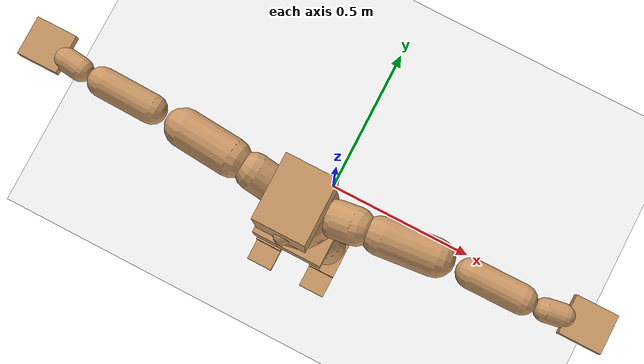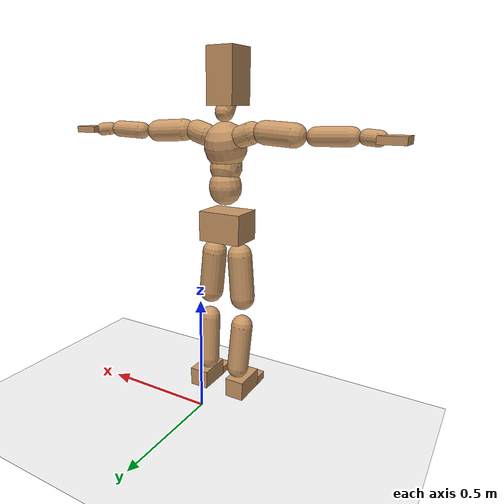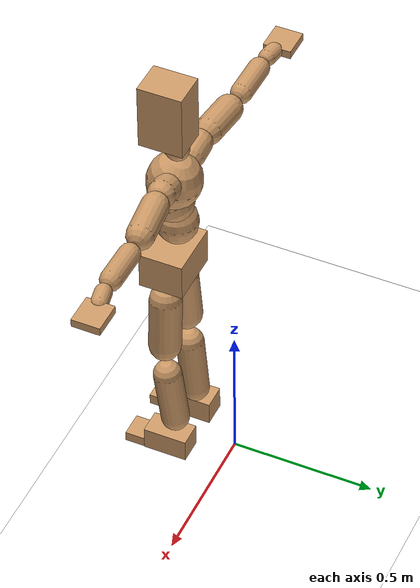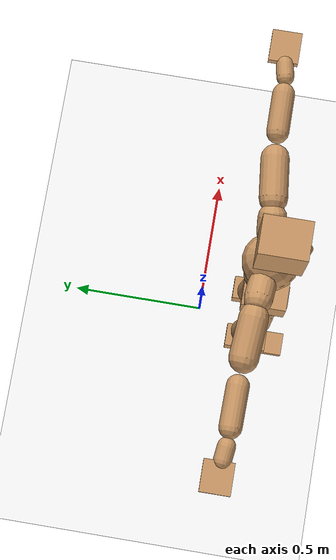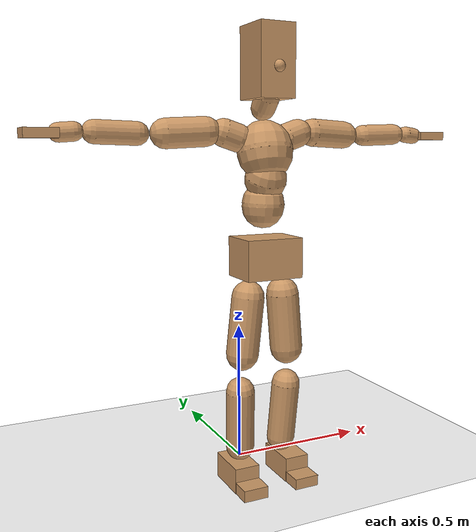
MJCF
<mujoco model="humanoid">
  <option integrator="implicitfast" />

  <visual>
    <global offwidth="1280" offheight="960" />
    <headlight active="1" ambient="0.34 0.34 0.34" diffuse="0.5 0.5 0.5" />
  </visual>

  <default>
    <joint damping="2" stiffness="2" armature="0.01" limited="true" solimplimit="0 .99 .01" />
    <geom condim="1" friction="0.7 0.005 0.0001" solimp=".99 .99 .003" solref="0.015 1" margin="0.001" rgba="0.8 0.6 .4 1" />
    <default class="smplcontact">
      <geom condim="3" friction="1. 0.005 0.0001" solref="0.015 1" solimp="0.98 0.98 0.001" priority="1" />
    </default>
    <default class="stiff_medium">
      <joint stiffness="10" />
    </default>
    <default class="stiff_medium_higher">
      <joint stiffness="50" />
    </default>
    <default class="stiff_high">
      <joint stiffness="100" />
    </default>
  </default>

  <asset>
    <texture type="skybox" builtin="gradient" rgb1="0.99 0.99 0.99" rgb2="0.608 0.828 0.892" width="100" />
    <texture builtin="flat" height="1278" mark="cross" markrgb="1 1 1" name="texgeom" random="0.01" rgb1="0.8 0.6 0.4" rgb2="0.8 0.6 0.4" type="cube" width="127" />
    <texture name="texplane" type="2d" builtin="checker" markrgb="1 1 1" rgb1="0.756 0.772 0.76" rgb2="0.6 0.6 0.6" width="100" height="100" />
    <material name="MatPlane" reflectance="0.5" texture="texplane" texrepeat="1 1" texuniform="true" />
    <material name="geom" texture="texgeom" texuniform="true" />
  </asset>

  <worldbody>
    <light name="tracking_light" pos="0 0 7" dir="0 0 -1" directional="true" cutoff="100" exponent="1" diffuse="1 1 1" specular="0.1 0.1 0.1" mode="trackcom" />
    <camera name="back" pos="0 3 2.4" xyaxes="-1 0 0 0 -1 2" mode="trackcom" />
    <camera name="side" pos="-3 0 2.4" xyaxes="0 -1 0 1 0 2" mode="trackcom" />
    <camera name="front_side" pos="-2.8 -2.8 0.8" xyaxes="0.5 -0.5 0 0.1 0.1 1" mode="trackcom" />
    <geom condim="3" name="floor" pos="0 0 0" rgba="1 1 1 1" size="100 100 .2" type="plane" material="MatPlane" />
    <body name="Pelvis" pos="-0.0018 -0.2233 0.798585" euler="90 0 0">
      <site name="Pelvis" size="0.01" />
      <freejoint name="Pelvis" />
      <geom type="box" pos="-0.0000 -0.0121 -0.0055" size="0.098348 0.066424 0.07636" quat="1.0000 0.0000 0.0000 0.0000" density="3165.830099" name="Pelvis" />
      <body name="L_Hip" pos="0.059075 -0.07769 -0.00578">
        <joint name="L_Hip_x" type="hinge" pos="0 0 0" axis="1 0 0" stiffness="5.966138699999998" range="-160.0 22.92" class="stiff_medium" damping="8.284486106310219" armature="0.005112758556376547"/>
        <joint name="L_Hip_y" type="hinge" pos="0 0 0" axis="0 1 0" stiffness="5.975056199999999" range="-70.0 70.0" class="stiff_medium" damping="5.712979736623547" armature="0.005462398407411005"/>
        <joint name="L_Hip_z" type="hinge" pos="0 0 0" axis="0 0 1" stiffness="5.9732682" range="-28.65 90.0" class="stiff_medium" damping="5.526007499315107" armature="0.005112236360404311"/>
        <geom type="capsule" density="2040.816327" fromto="0.005865 -0.06375 -0.000765 0.02329 -0.25517 -0.00306" size="0.05535" name="L_Hip" />
        <body name="L_Knee" pos="0.029155 -0.31892 -0.003825">
          <joint name="L_Knee_x" type="hinge" pos="0 0 0" axis="1 0 0" range="-5.16 171.89" damping="4.457618359508005" armature="0.005170875426032526" stiffness="1.2008581600000001"/>
          <joint name="L_Knee_y" type="hinge" pos="0 0 0" axis="0 1 0" range="-4.58 6.88" damping="4.598272838351636" armature="0.005523860242055518" stiffness="1.1961807599999998"/>
          <joint name="L_Knee_z" type="hinge" pos="0 0 0" axis="0 0 1" range="-6.88 4.58" damping="4.461976160604364" armature="0.005168304620364264" stiffness="1.20380574"/>
          <geom type="capsule" density="1234.567901" fromto="-0.002295 -0.06766 -0.007395 -0.009265 -0.27064 -0.02975" size="0.04869" name="L_Knee" />
          <body name="L_Ankle" pos="-0.01156 -0.3383 -0.037145">
            <joint name="L_Ankle_x" type="hinge" pos="0 0 0" axis="1 0 0" range="-45.84 45.84" class="stiff_medium" damping="3.4980555196580108" armature="0.005485351237082706" stiffness="6.1965"/>
            <joint name="L_Ankle_y" type="hinge" pos="0 0 0" axis="0 1 0" range="-74.48 22.92" class="stiff_medium" damping="1.751514353083794" armature="0.005500959375020919" stiffness="6.1965"/>
            <joint name="L_Ankle_z" type="hinge" pos="0 0 0" axis="0 0 1" range="-4.58 4.58" class="stiff_medium" damping="3.5354133385165336" armature="0.005603139529555493" stiffness="6.1965"/>
            <geom type="box" pos="0.019805 -0.020315 0.02057" size="0.04347 0.04176 0.0765" quat="1.0000 0.0000 0.0000 0.0000" density="449.071558" name="L_Ankle" class="smplcontact" />
            <body name="L_Toe" pos="0.02244 -0.04743 0.101405">
              <joint name="L_Toe_x" type="hinge" pos="0 0 0" axis="1 0 0" range="-91.67 22.92" armature="0.0056623876359982814" damping="1.1846853588436612" stiffness="1.2393"/>
              <joint name="L_Toe_y" type="hinge" pos="0 0 0" axis="0 1 0" range="-4.58 4.58" armature="0.005734030461398372" damping="1.192156361456919" stiffness="1.2393"/>
              <joint name="L_Toe_z" type="hinge" pos="0 0 0" axis="0 0 1" range="-4.58 4.58" armature="0.005878888398200573" damping="1.2071210703065347" stiffness="1.2393"/>
              <geom type="box" pos="-0.00255 0.004675 0.02108" size="0.04302 0.018 0.04464" quat="1.0000 0.0000 0.0000 0.0000" density="423.206892" name="L_Toe" class="smplcontact" />
            </body>
          </body>
        </body>
      </body>
      <body name="R_Hip" pos="-0.057545 -0.076925 -0.003655">
        <joint name="R_Hip_x" type="hinge" pos="0 0 0" axis="1 0 0" stiffness="5.966138699999998" range="-160.0 22.92" class="stiff_medium" damping="8.284486106310219" armature="0.005112758556376547"/>
        <joint name="R_Hip_y" type="hinge" pos="0 0 0" axis="0 1 0" stiffness="5.975056199999999" range="-70.0 70.0" class="stiff_medium" damping="5.712979736623547" armature="0.005462398407411005"/>
        <joint name="R_Hip_z" type="hinge" pos="0 0 0" axis="0 0 1" stiffness="5.9732682" range="-90.0 28.65" class="stiff_medium" damping="5.526007499315107" armature="0.005112236360404311"/>
        <geom type="capsule" density="2040.816327" fromto="-0.006545 -0.065025 -0.00153 -0.02601 -0.260185 -0.006035" size="0.05454" name="R_Hip" />
        <body name="R_Knee" pos="-0.032555 -0.32521 -0.007565">
          <joint name="R_Knee_x" type="hinge" pos="0 0 0" axis="1 0 0" range="-5.16 171.89" damping="4.457618359508005" armature="0.005170875426032526" stiffness="1.2008581600000001"/>
          <joint name="R_Knee_y" type="hinge" pos="0 0 0" axis="0 1 0" range="-6.88 4.58" damping="4.598272838351636" armature="0.005523860242055518" stiffness="1.1961807599999998"/>
          <joint name="R_Knee_z" type="hinge" pos="0 0 0" axis="0 0 1" range="-4.58 6.88" damping="4.461976160604364" armature="0.005168304620364264" stiffness="1.20380574"/>
          <geom type="capsule" density="1234.567901" fromto="0.00272 -0.067745 -0.007225 0.01071 -0.270895 -0.02873" size="0.04869" name="R_Knee" />
          <body name="R_Ankle" pos="0.01343 -0.33864 -0.035955">
            <joint name="R_Ankle_x" type="hinge" pos="0 0 0" axis="1 0 0" range="-45.84 45.84" class="stiff_medium" damping="3.4980555196580108" armature="0.005485351237082706" stiffness="6.1965"/>
            <joint name="R_Ankle_y" type="hinge" pos="0 0 0" axis="0 1 0" range="-22.92 74.48" class="stiff_medium" damping="1.751514353083794" armature="0.005500959375020919" stiffness="6.1965"/>
            <joint name="R_Ankle_z" type="hinge" pos="0 0 0" axis="0 0 1" range="-4.58 4.58" class="stiff_medium" damping="3.5354133385165336" armature="0.005603139529555493" stiffness="6.1965"/>
            <geom type="box" pos="-0.01802 -0.01479 0.02176" size="0.04347 0.04302 0.07785" quat="1.0000 0.0000 0.0000 0.0000" density="434.700981" name="R_Ankle" class="smplcontact" />
            <body name="R_Toe" pos="-0.02159 -0.040885 0.104805">
              <joint name="R_Toe_x" type="hinge" pos="0 0 0" axis="1 0 0" range="-91.67 22.92" armature="0.0056623876359982814" damping="1.1846853588436612" stiffness="1.2393"/>
              <joint name="R_Toe_y" type="hinge" pos="0 0 0" axis="0 1 0" range="-4.58 4.58" armature="0.005734030461398372" damping="1.192156361456919" stiffness="1.2393"/>
              <joint name="R_Toe_z" type="hinge" pos="0 0 0" axis="0 0 1" range="-4.58 4.58" armature="0.005878888398200573" damping="1.2071210703065347" stiffness="1.2393"/>
              <geom type="box" pos="0.00357 0.003825 0.019295" size="0.04311 0.01944 0.04437" quat="1.0000 0.0000 0.0000 0.0000" density="407.384095" name="R_Toe" class="smplcontact" />
            </body>
          </body>
        </body>
      </body>
      <body name="Torso" pos="-0.00225 0.0981 -0.02403">
        <joint name="Torso_x" type="hinge" pos="0 0 0" axis="1 0 0" range="-25.78 57.3" class="stiff_medium" damping="10.79066287707171" armature="0.0070139426835881214" stiffness="7.378218599999999"/>
        <joint name="Torso_y" type="hinge" pos="0 0 0" axis="0 1 0" range="-57.3 57.3" class="stiff_high" damping="12.699756631597609" armature="0.005348312492888898" stiffness="75.39005"/>
        <joint name="Torso_z" type="hinge" pos="0 0 0" axis="0 0 1" range="-34.38 34.38" class="stiff_high" damping="13.78931186207527" armature="0.006441906627780043" stiffness="73.7922530612245"/>
        <geom type="capsule" density="2040.816327" fromto="0.00225 0.05472 0.00045 0.0027 0.06687 0.00054" size="0.070748" name="Torso" />
        <body name="Spine" pos="0.00495 0.12168 0.00099">
          <joint name="Spine_x" type="hinge" pos="0 0 0" axis="1 0 0" stiffness="7.515189000000002" range="-25.78 57.3" class="stiff_medium" damping="11.229535285069272" armature="0.007457635328406439"/>
          <joint name="Spine_y" type="hinge" pos="0 0 0" axis="0 1 0" stiffness="7.604954081632652" range="-57.3 57.3" class="stiff_high" damping="5.097795456774209" armature="0.005339348173603776"/>
          <joint name="Spine_z" type="hinge" pos="0 0 0" axis="0 0 1" stiffness="15.199596800000002" range="-34.38 34.38" class="stiff_high" damping="8.296269441807487" armature="0.006289282936317823"/>
          <geom type="capsule" density="2040.816327" fromto="0.00063 0.02142 0.01026 0.00072 0.02619 0.0126" size="0.06946" name="Spine" />
          <body name="Chest" pos="0.00135 0.04761 0.02286">
            <joint name="Chest_x" type="hinge" pos="0 0 0" axis="1 0 0" stiffness="7.7273957142857155" range="-25.78 57.3" class="stiff_medium" damping="11.567290964756623" armature="0.0076956914915635765"/>
            <joint name="Chest_y" type="hinge" pos="0 0 0" axis="0 1 0" stiffness="7.196691219512195" range="-57.3 57.3" class="stiff_high" damping="4.953513265379715" armature="0.005327381735634787"/>
            <joint name="Chest_z" type="hinge" pos="0 0 0" axis="0 0 1" stiffness="15.509569795918367" range="-34.38 34.38" class="stiff_high" damping="8.310204084259297" armature="0.006184308286105733"/>
            <geom type="capsule" density="2040.816327" fromto="-0.00081 0.06138 -0.01557 -0.0009 0.07497 -0.01908" size="0.092184" name="Chest" />
            <body name="Neck" pos="-0.00252 0.19251 -0.03861">
              <joint name="Neck_x" type="hinge" pos="0 0 0" axis="1 0 0" range="-28.65 57.3" class="stiff_medium_higher" damping="9.859293356864805" armature="0.00994472685879985" stiffness="48.872969000000005"/>
              <joint name="Neck_y" type="hinge" pos="0 0 0" axis="0 1 0" range="-40.11 40.11" class="stiff_medium_higher" damping="9.813863205246813" armature="0.009809668204441332" stiffness="49.09029999999999"/>
              <joint name="Neck_z" type="hinge" pos="0 0 0" axis="0 0 1" range="-40.11 40.11" class="stiff_medium_higher" damping="9.924728289965035" armature="0.009957239330613907" stiffness="49.461617"/>
              <geom type="capsule" density="1000" fromto="0.0009 0.0117 0.00927 0.00369 0.0468 0.03699" size="0.040112" name="Neck" />
              <body name="Head" pos="0.0052 0.065 0.0513">
                <joint name="Head_x" type="hinge" pos="0 0 0" axis="1 0 0" range="-28.65 57.3" class="stiff_medium_higher" damping="2.000000000000004" armature="0.01000000000000004" stiffness="50.0"/>
                <joint name="Head_y" type="hinge" pos="0 0 0" axis="0 1 0" range="-40.11 40.11" class="stiff_medium_higher" damping="2.0" armature="0.01" stiffness="50.0"/>
                <joint name="Head_z" type="hinge" pos="0 0 0" axis="0 0 1" range="-40.11 40.11" class="stiff_medium_higher" damping="2.000000000000001" armature="0.01000000000000001" stiffness="50.0"/>
                <geom type="box" pos="-0.0042 0.0876 -0.0116" size="0.0606 0.1154 0.076" quat="1.0000 0.0000 0.0000 0.0000" density="1018.069894" name="Head" />
                <geom type="capsule" name="nose" size="0.02 0.01" pos="0 0.07 0.05" quat="1 0 0 0" mass="0" contype="0" conaffinity="0" />
              </body>
            </body>
            <body name="L_Thorax" pos="0.067768 0.104662 -0.029326">
              <joint name="L_Thorax_x" type="hinge" pos="0 0 0" axis="1 0 0" range="-10.89 4.58" class="stiff_medium_higher" damping="11.555926081383854" armature="0.005473668010684904" stiffness="30.495873"/>
              <joint name="L_Thorax_y" type="hinge" pos="0 0 0" axis="0 1 0" range="-28.65 17.19" class="stiff_medium_higher" damping="11.323675956724701" armature="0.005261688221579355" stiffness="30.462095"/>
              <joint name="L_Thorax_z" type="hinge" pos="0 0 0" axis="0 0 1" range="-31.51 40.11" class="stiff_medium_higher" damping="11.323589149694058" armature="0.005261496748292337" stiffness="30.4627365"/>
              <geom type="capsule" density="1000" fromto="0.015652 0.005246 -0.001548 0.062608 0.020984 -0.006106" size="0.04689" name="L_Thorax" />
              <body name="L_Shoulder" pos="0.07826 0.02623 -0.007654">
                <joint name="L_Shoulder_x" type="hinge" pos="0 0 0" axis="1 0 0" range="-97.4 97.4" class="stiff_medium" damping="3.4939045509568643" armature="0.005556544119489747" stiffness="6.1025986"/>
                <joint name="L_Shoulder_y" type="hinge" pos="0 0 0" axis="0 1 0" range="-108.86 80.21" class="stiff_medium" damping="3.400392406402702" armature="0.005269111427976456" stiffness="6.0956243"/>
                <joint name="L_Shoulder_z" type="hinge" pos="0 0 0" axis="0 0 1" range="-97.4 85.94" class="stiff_medium" damping="3.4002541968494615" armature="0.005268862205778419" stiffness="6.095417100000001"/>
                <geom type="capsule" density="1000" fromto="0.044634 -0.002236 -0.00473 0.178622 -0.008772 -0.01892" size="0.04653" name="L_Shoulder" />
                <body name="L_Elbow" pos="0.223256 -0.011008 -0.02365">
                  <joint name="L_Elbow_x" type="hinge" pos="0 0 0" axis="1 0 0" range="-17.19 4.58" damping="2.951476282130367" armature="0.005689428016587954" stiffness="1.22489814"/>
                  <joint name="L_Elbow_y" type="hinge" pos="0 0 0" axis="0 1 0" range="-180.0 17.19" damping="2.8500857800400676" armature="0.005305297026638614" stiffness="1.22488734"/>
                  <joint name="L_Elbow_z" type="hinge" pos="0 0 0" axis="0 0 1" range="-100.84 4.58" damping="2.849911081216699" armature="0.005303989337576094" stiffness="1.22503914"/>
                  <geom type="capsule" density="1000" fromto="0.042828 0.001548 -0.000172 0.171484 0.006192 -0.000774" size="0.03645" name="L_Elbow" />
                  <body name="L_Wrist" pos="0.214312 0.00774 -0.001032">
                    <joint name="L_Wrist_x" type="hinge" pos="0 0 0" axis="1 0 0" range="-180.0 22.92" armature="0.005729485041482478" damping="1.1938442182798314" stiffness="1.24379766"/>
                    <joint name="L_Wrist_y" type="hinge" pos="0 0 0" axis="0 1 0" range="-17.19 17.19" armature="0.005429346137515428" damping="1.1614725914285373" stiffness="1.24233982"/>
                    <joint name="L_Wrist_z" type="hinge" pos="0 0 0" axis="0 0 1" range="-22.92 22.92" armature="0.00541257507679777" damping="1.159896635388302" stiffness="1.2428097400000002"/>
                    <geom type="capsule" density="1000" fromto="0.014448 -0.001376 -0.00258 0.057792 -0.00559 -0.01032" size="0.02862" name="L_Wrist" class="smplcontact" />
                    <body name="L_Hand" pos="0.07224 -0.007052 -0.012814">
                      <joint name="L_Hand_x" type="hinge" pos="0 0 0" axis="1 0 0" range="-17.19 17.19" armature="0.005882541149362159" damping="1.2145781733887882" stiffness="1.2538800000000003"/>
                      <joint name="L_Hand_y" type="hinge" pos="0 0 0" axis="0 1 0" range="-51.57 51.57" armature="0.00563450054888528" damping="1.1886957178551856" stiffness="1.2538800000000003"/>
                      <joint name="L_Hand_z" type="hinge" pos="0 0 0" axis="0 0 1" range="-91.67 91.67" armature="0.005568381937829201" damping="1.1817007018873502" stiffness="1.2538800000000003"/>
                      <geom type="box" pos="0.042398 0.00086 -0.004988" size="0.05265 0.01422 0.04842" quat="1.0000 0.0000 0.0000 0.0000" density="400.552564" name="L_Hand" class="smplcontact" />
                    </body>
                  </body>
                </body>
              </body>
            </body>
            <body name="R_Thorax" pos="-0.070348 0.102168 -0.033196">
              <joint name="R_Thorax_x" type="hinge" pos="0 0 0" axis="1 0 0" range="-10.89 4.58" class="stiff_medium_higher" damping="11.555926081383854" armature="0.005473668010684904" stiffness="30.495873"/>
              <joint name="R_Thorax_y" type="hinge" pos="0 0 0" axis="0 1 0" range="-17.19 28.65" class="stiff_medium_higher" damping="11.323675956724701" armature="0.005261688221579355" stiffness="30.462095"/>
              <joint name="R_Thorax_z" type="hinge" pos="0 0 0" axis="0 0 1" range="-40.11 31.51" class="stiff_medium_higher" damping="11.323589149694058" armature="0.005261496748292337" stiffness="30.4627365"/>
              <geom type="capsule" density="1000" fromto="-0.016512 0.00559 -0.001548 -0.066048 0.02236 -0.006278" size="0.04599" name="R_Thorax" />
              <body name="R_Shoulder" pos="-0.08256 0.028036 -0.007826">
                <joint name="R_Shoulder_x" type="hinge" pos="0 0 0" axis="1 0 0" range="-97.4 97.4" class="stiff_medium" damping="3.4939045509568643" armature="0.005556544119489747" stiffness="6.1025986"/>
                <joint name="R_Shoulder_y" type="hinge" pos="0 0 0" axis="0 1 0" range="-80.21 108.86" class="stiff_medium" damping="3.400392406402702" armature="0.005269111427976456" stiffness="6.0956243"/>
                <joint name="R_Shoulder_z" type="hinge" pos="0 0 0" axis="0 0 1" range="-85.94 97.4" class="stiff_medium" damping="3.4002541968494615" armature="0.005268862205778419" stiffness="6.095417100000001"/>
                <geom type="capsule" density="1000" fromto="-0.043602 -0.002322 -0.003698 -0.17458 -0.009202 -0.014706" size="0.04779" name="R_Shoulder" />
                <body name="R_Elbow" pos="-0.218182 -0.011438 -0.018404">
                  <joint name="R_Elbow_x" type="hinge" pos="0 0 0" axis="1 0 0" range="-17.19 4.58" damping="2.951476282130367" armature="0.005689428016587954" stiffness="1.22489814"/>
                  <joint name="R_Elbow_y" type="hinge" pos="0 0 0" axis="0 1 0" range="-17.19 180.0" damping="2.8500857800400676" armature="0.005305297026638614" stiffness="1.22488734"/>
                  <joint name="R_Elbow_z" type="hinge" pos="0 0 0" axis="0 0 1" range="-4.58 100.84" damping="2.849911081216699" armature="0.005303989337576094" stiffness="1.22503914"/>
                  <geom type="capsule" density="1000" fromto="-0.043946 0.001376 -0.000946 -0.175612 0.005332 -0.003784" size="0.03672" name="R_Elbow" />
                  <body name="R_Wrist" pos="-0.219558 0.006708 -0.004816">
                    <joint name="R_Wrist_x" type="hinge" pos="0 0 0" axis="1 0 0" range="-180.0 22.92" armature="0.005729485041482478" damping="1.1938442182798314" stiffness="1.24379766"/>
                    <joint name="R_Wrist_y" type="hinge" pos="0 0 0" axis="0 1 0" range="-17.19 17.19" armature="0.005429346137515428" damping="1.1614725914285373" stiffness="1.24233982"/>
                    <joint name="R_Wrist_z" type="hinge" pos="0 0 0" axis="0 0 1" range="-22.92 22.92" armature="0.00541257507679777" damping="1.159896635388302" stiffness="1.2428097400000002"/>
                    <geom type="capsule" density="1000" fromto="-0.014534 -0.001032 -0.001806 -0.058222 -0.004214 -0.007138" size="0.02934" name="R_Wrist" class="smplcontact" />
                    <body name="R_Hand" pos="-0.072756 -0.005246 -0.008858">
                      <joint name="R_Hand_x" type="hinge" pos="0 0 0" axis="1 0 0" range="-17.19 17.19" armature="0.005882541149362159" damping="1.2145781733887882" stiffness="1.2538800000000003"/>
                      <joint name="R_Hand_y" type="hinge" pos="0 0 0" axis="0 1 0" range="-51.57 51.57" armature="0.00563450054888528" damping="1.1886957178551856" stiffness="1.2538800000000003"/>
                      <joint name="R_Hand_z" type="hinge" pos="0 0 0" axis="0 0 1" range="-91.67 91.67" armature="0.005568381937829201" damping="1.1817007018873502" stiffness="1.2538800000000003"/>
                      <geom type="box" pos="-0.039732 -0.000774 -0.006794" size="0.05121 0.01476 0.04914" quat="1.0000 0.0000 0.0000 0.0000" density="403.679611" name="R_Hand" class="smplcontact" />
                    </body>
                  </body>
                </body>
              </body>
            </body>
          </body>
        </body>
      </body>
    </body>
  </worldbody>
  <actuator>
    <general name="L_Hip_x" joint="L_Hip_x" biastype="affine" gainprm="171.42510150845158" biasprm="-128.46573865503248 -107.39049659999998 -1.104598147508029" ctrllimited="true" ctrlrange="-1 1" forcerange="-214.78099319999995 214.78099319999995" />
    <general name="L_Hip_y" joint="L_Hip_y" biastype="affine" gainprm="131.39834863894302" biasprm="0.0 -107.5510116 -1.1425959473247094" ctrllimited="true" ctrlrange="-1 1" forcerange="-215.1020232 215.1020232" />
    <general name="L_Hip_z" joint="L_Hip_z" biastype="affine" gainprm="111.32677662433386" biasprm="57.56340283103987 -107.51882759999998 -1.1052014998630215" ctrllimited="true" ctrlrange="-1 1" forcerange="-215.03765519999996 215.03765519999996" />
    <general name="L_Knee_x" joint="L_Knee_x" biastype="affine" gainprm="166.9850250152448" biasprm="157.25169850771962 -108.07723440000001 -1.1144045898770012" ctrllimited="true" ctrlrange="-1 1" forcerange="-216.15446880000002 216.15446880000002" />
    <general name="L_Knee_y" joint="L_Knee_y" biastype="affine" gainprm="10.766419851066868" biasprm="2.1607997955893365 -107.65626839999999 -1.149568209587909" ctrllimited="true" ctrlrange="-1 1" forcerange="-215.31253679999998 215.31253679999998" />
    <general name="L_Knee_z" joint="L_Knee_z" biastype="affine" gainprm="10.835049726066687" biasprm="-2.174573679751604 -108.3425166 -1.115494040151091" ctrllimited="true" ctrlrange="-1 1" forcerange="-216.6850332 216.6850332" />
    <general name="L_Ankle_x" joint="L_Ankle_x" biastype="affine" gainprm="44.61808638830531" biasprm="0.0 -55.7685 -1.1660185065526703" ctrllimited="true" ctrlrange="-1 1" forcerange="-111.537 111.537" />
    <general name="L_Ankle_y" joint="L_Ankle_y" biastype="affine" gainprm="47.4018500678549" biasprm="-25.092806873702244 -55.7685 -1.167676235389196" ctrllimited="true" ctrlrange="-1 1" forcerange="-111.537 111.537" />
    <general name="L_Ankle_z" joint="L_Ankle_z" biastype="affine" gainprm="4.457915263054936" biasprm="0.0 -55.7685 -1.1784711128388445" ctrllimited="true" ctrlrange="-1 1" forcerange="-111.537 111.537" />
    <general name="L_Toe_x" joint="L_Toe_x" biastype="affine" gainprm="44.614193012529704" biasprm="-26.766958457207583 -44.6148 -0.4738741435374645" ctrllimited="true" ctrlrange="-1 1" forcerange="-89.2296 89.2296" />
    <general name="L_Toe_y" joint="L_Toe_y" biastype="affine" gainprm="3.566332210443949" biasprm="0.0 -44.6148 -0.47686254458276767" ctrllimited="true" ctrlrange="-1 1" forcerange="-89.2296 89.2296" />
    <general name="L_Toe_z" joint="L_Toe_z" biastype="affine" gainprm="3.566332210443949" biasprm="0.0 -44.6148 -0.4828484281226139" ctrllimited="true" ctrlrange="-1 1" forcerange="-89.2296 89.2296" />
    <general name="R_Hip_x" joint="R_Hip_x" biastype="affine" gainprm="171.42510150845158" biasprm="-128.46573865503248 -107.39049659999998 -1.104598147508029" ctrllimited="true" ctrlrange="-1 1" forcerange="-214.78099319999995 214.78099319999995" />
    <general name="R_Hip_y" joint="R_Hip_y" biastype="affine" gainprm="131.39834863894302" biasprm="0.0 -107.5510116 -1.1425959473247094" ctrllimited="true" ctrlrange="-1 1" forcerange="-215.1020232 215.1020232" />
    <general name="R_Hip_z" joint="R_Hip_z" biastype="affine" gainprm="111.32677662433386" biasprm="-57.56340283103987 -107.51882759999998 -1.1052014998630215" ctrllimited="true" ctrlrange="-1 1" forcerange="-215.03765519999996 215.03765519999996" />
    <general name="R_Knee_x" joint="R_Knee_x" biastype="affine" gainprm="166.9850250152448" biasprm="157.25169850771962 -108.07723440000001 -1.1144045898770012" ctrllimited="true" ctrlrange="-1 1" forcerange="-216.15446880000002 216.15446880000002" />
    <general name="R_Knee_y" joint="R_Knee_y" biastype="affine" gainprm="10.766419851066868" biasprm="-2.1607997955893365 -107.65626839999999 -1.149568209587909" ctrllimited="true" ctrlrange="-1 1" forcerange="-215.31253679999998 215.31253679999998" />
    <general name="R_Knee_z" joint="R_Knee_z" biastype="affine" gainprm="10.835049726066687" biasprm="2.174573679751604 -108.3425166 -1.115494040151091" ctrllimited="true" ctrlrange="-1 1" forcerange="-216.6850332 216.6850332" />
    <general name="R_Ankle_x" joint="R_Ankle_x" biastype="affine" gainprm="44.61808638830531" biasprm="0.0 -55.7685 -1.1660185065526703" ctrllimited="true" ctrlrange="-1 1" forcerange="-111.537 111.537" />
    <general name="R_Ankle_y" joint="R_Ankle_y" biastype="affine" gainprm="47.4018500678549" biasprm="25.092806873702244 -55.7685 -1.167676235389196" ctrllimited="true" ctrlrange="-1 1" forcerange="-111.537 111.537" />
    <general name="R_Ankle_z" joint="R_Ankle_z" biastype="affine" gainprm="4.457915263054936" biasprm="0.0 -55.7685 -1.1784711128388445" ctrllimited="true" ctrlrange="-1 1" forcerange="-111.537 111.537" />
    <general name="R_Toe_x" joint="R_Toe_x" biastype="affine" gainprm="44.614193012529704" biasprm="-26.766958457207583 -44.6148 -0.4738741435374645" ctrllimited="true" ctrlrange="-1 1" forcerange="-89.2296 89.2296" />
    <general name="R_Toe_y" joint="R_Toe_y" biastype="affine" gainprm="3.566332210443949" biasprm="0.0 -44.6148 -0.47686254458276767" ctrllimited="true" ctrlrange="-1 1" forcerange="-89.2296 89.2296" />
    <general name="R_Toe_z" joint="R_Toe_z" biastype="affine" gainprm="3.566332210443949" biasprm="0.0 -44.6148 -0.4828484281226139" ctrllimited="true" ctrlrange="-1 1" forcerange="-89.2296 89.2296" />
    <general name="Torso_x" joint="Torso_x" biastype="affine" gainprm="128.38273391108075" biasprm="48.70755624551353 -177.07724639999998 -2.877510100552456" ctrllimited="true" ctrlrange="-1 1" forcerange="-265.6158696 265.6158696" />
    <general name="Torso_y" joint="Torso_y" biastype="affine" gainprm="180.94944800659812" biasprm="0.0 -180.93612 -2.539951326319522" ctrllimited="true" ctrlrange="-1 1" forcerange="-271.40418 271.40418" />
    <general name="Torso_z" joint="Torso_z" biastype="affine" gainprm="106.26867172995728" biasprm="0.0 -177.1014073469388 -2.7578623724150537" ctrllimited="true" ctrlrange="-1 1" forcerange="-265.6521110204082 265.6521110204082" />
    <general name="Spine_x" joint="Spine_x" biastype="affine" gainprm="130.7660509921028" biasprm="49.61177091082185 -180.36453600000004 -2.994542742685139" ctrllimited="true" ctrlrange="-1 1" forcerange="-270.54680400000007 270.54680400000007" />
    <general name="Spine_y" joint="Spine_y" biastype="affine" gainprm="182.53234255541065" biasprm="0.0 -182.51889795918365 -2.5488977283871046" ctrllimited="true" ctrlrange="-1 1" forcerange="-273.7783469387755 273.7783469387755" />
    <general name="Spine_z" joint="Spine_z" biastype="affine" gainprm="109.4451582489807" biasprm="0.0 -182.39516160000002 -2.7654231472691624" ctrllimited="true" ctrlrange="-1 1" forcerange="-273.5927424 273.5927424" />
    <general name="Chest_x" joint="Chest_x" biastype="affine" gainprm="134.45849758541564" biasprm="51.012660614977136 -185.45749714285716 -3.0846109239350996" ctrllimited="true" ctrlrange="-1 1" forcerange="-278.18624571428575 278.18624571428575" />
    <general name="Chest_y" joint="Chest_y" biastype="affine" gainprm="172.7333121074549" biasprm="0.0 -172.72058926829266 -2.4767566326898574" ctrllimited="true" ctrlrange="-1 1" forcerange="-259.080883902439 259.080883902439" />
    <general name="Chest_z" joint="Chest_z" biastype="affine" gainprm="111.67712821749963" biasprm="0.0 -186.1148375510204 -2.770068028086432" ctrllimited="true" ctrlrange="-1 1" forcerange="-279.1722563265306 279.1722563265306" />
    <general name="Neck_x" joint="Neck_x" biastype="affine" gainprm="26.393347287520783" biasprm="8.797782429173594 -35.18853768 -0.7887434685491845" ctrllimited="true" ctrlrange="-1 1" forcerange="-70.37707536 70.37707536" />
    <general name="Neck_y" joint="Neck_y" biastype="affine" gainprm="24.743333694173746" biasprm="0.0 -35.345015999999994 -0.7851090564197452" ctrllimited="true" ctrlrange="-1 1" forcerange="-70.69003199999999 70.69003199999999" />
    <general name="Neck_z" joint="Neck_z" biastype="affine" gainprm="24.930491247444344" biasprm="0.0 -35.61236424 -0.7939782631972028" ctrllimited="true" ctrlrange="-1 1" forcerange="-71.22472848 71.22472848" />
    <general name="Head_x" joint="Head_x" biastype="affine" gainprm="18.001325905069514" biasprm="6.000441968356505 -24.0 -0.8000000000000016" ctrllimited="true" ctrlrange="-1 1" forcerange="-48.0 48.0" />
    <general name="Head_y" joint="Head_y" biastype="affine" gainprm="16.801237511398213" biasprm="0.0 -24.0 -0.8" ctrllimited="true" ctrlrange="-1 1" forcerange="-48.0 48.0" />
    <general name="Head_z" joint="Head_z" biastype="affine" gainprm="16.801237511398213" biasprm="0.0 -24.0 -0.8000000000000004" ctrllimited="true" ctrlrange="-1 1" forcerange="-48.0 48.0" />
    <general name="L_Thorax_x" joint="L_Thorax_x" biastype="affine" gainprm="9.880751971316435" biasprm="-4.03022268513295 -73.1900952 -0.9244740865107084" ctrllimited="true" ctrlrange="-1 1" forcerange="-146.3801904 146.3801904" />
    <general name="L_Thorax_y" joint="L_Thorax_y" biastype="affine" gainprm="29.245765325130055" biasprm="-7.311441331282514 -73.109028 -0.9058940765379762" ctrllimited="true" ctrlrange="-1 1" forcerange="-146.218056 146.218056" />
    <general name="L_Thorax_z" joint="L_Thorax_z" biastype="affine" gainprm="45.69428059108983" biasprm="5.4868865272741205 -73.1105676 -0.9058871319755246" ctrllimited="true" ctrlrange="-1 1" forcerange="-146.2211352 146.2211352" />
    <general name="L_Shoulder_x" joint="L_Shoulder_x" biastype="affine" gainprm="49.79576020639629" biasprm="0.0 -29.29247328 -0.9317078802551638" ctrllimited="true" ctrlrange="-1 1" forcerange="-58.58494656 58.58494656" />
    <general name="L_Shoulder_y" joint="L_Shoulder_y" biastype="affine" gainprm="48.27579397415896" biasprm="-7.315287974610748 -29.25899664 -0.9067713083740538" ctrllimited="true" ctrlrange="-1 1" forcerange="-58.51799328 58.51799328" />
    <general name="L_Shoulder_z" joint="L_Shoulder_z" biastype="affine" gainprm="46.8111451396032" biasprm="-2.9260157265182385 -29.25800208 -0.9067344524931897" ctrllimited="true" ctrlrange="-1 1" forcerange="-58.51600416 58.51600416" />
    <general name="L_Elbow_x" joint="L_Elbow_x" biastype="affine" gainprm="8.37738118268911" biasprm="-4.852493188502972 -44.096333040000005 -0.47223620514085873" ctrllimited="true" ctrlrange="-1 1" forcerange="-88.19266608000001 88.19266608000001" />
    <general name="L_Elbow_y" joint="L_Elbow_y" biastype="affine" gainprm="75.88062610004468" biasprm="-62.650868377444475 -44.09594424 -0.45601372480641084" ctrllimited="true" ctrlrange="-1 1" forcerange="-88.19188848 88.19188848" />
    <general name="L_Elbow_z" joint="L_Elbow_z" biastype="affine" gainprm="40.571666713560084" biasprm="-37.046372963833186 -44.10140904 -0.45598577299467186" ctrllimited="true" ctrlrange="-1 1" forcerange="-88.20281808 88.20281808" />
    <general name="L_Wrist_x" joint="L_Wrist_x" biastype="affine" gainprm="13.215183909466049" biasprm="-10.229849637783003 -7.46278596 -0.4775376873119326" ctrllimited="true" ctrlrange="-1 1" forcerange="-14.92557192 14.92557192" />
    <general name="L_Wrist_y" joint="L_Wrist_y" biastype="affine" gainprm="2.23637639846654" biasprm="0.0 -7.45403892 -0.4645890365714149" ctrllimited="true" ctrlrange="-1 1" forcerange="-14.90807784 14.90807784" />
    <general name="L_Wrist_z" joint="L_Wrist_z" biastype="affine" gainprm="2.9829630890312955" biasprm="0.0 -7.456858440000001 -0.46395865415532084" ctrllimited="true" ctrlrange="-1 1" forcerange="-14.913716880000003 14.913716880000003" />
    <general name="L_Hand_x" joint="L_Hand_x" biastype="affine" gainprm="2.2571502525848572" biasprm="0.0 -7.5232800000000015 -0.4858312693555153" ctrllimited="true" ctrlrange="-1 1" forcerange="-15.046560000000003 15.046560000000003" />
    <general name="L_Hand_y" joint="L_Hand_y" biastype="affine" gainprm="6.771450757754571" biasprm="0.0 -7.5232800000000015 -0.47547828714207424" ctrllimited="true" ctrlrange="-1 1" forcerange="-15.046560000000003 15.046560000000003" />
    <general name="L_Hand_z" joint="L_Hand_z" biastype="affine" gainprm="12.036821620387075" biasprm="0.0 -7.5232800000000015 -0.4726802807549401" ctrllimited="true" ctrlrange="-1 1" forcerange="-15.046560000000003 15.046560000000003" />
    <general name="R_Thorax_x" joint="R_Thorax_x" biastype="affine" gainprm="9.880751971316435" biasprm="-4.03022268513295 -73.1900952 -0.9244740865107084" ctrllimited="true" ctrlrange="-1 1" forcerange="-146.3801904 146.3801904" />
    <general name="R_Thorax_y" joint="R_Thorax_y" biastype="affine" gainprm="29.245765325130055" biasprm="7.311441331282509 -73.109028 -0.9058940765379762" ctrllimited="true" ctrlrange="-1 1" forcerange="-146.218056 146.218056" />
    <general name="R_Thorax_z" joint="R_Thorax_z" biastype="affine" gainprm="45.69428059108983" biasprm="-5.4868865272741205 -73.1105676 -0.9058871319755246" ctrllimited="true" ctrlrange="-1 1" forcerange="-146.2211352 146.2211352" />
    <general name="R_Shoulder_x" joint="R_Shoulder_x" biastype="affine" gainprm="49.79576020639629" biasprm="0.0 -29.29247328 -0.9317078802551638" ctrllimited="true" ctrlrange="-1 1" forcerange="-58.58494656 58.58494656" />
    <general name="R_Shoulder_y" joint="R_Shoulder_y" biastype="affine" gainprm="48.27579397415896" biasprm="7.315287974610748 -29.25899664 -0.9067713083740538" ctrllimited="true" ctrlrange="-1 1" forcerange="-58.51799328 58.51799328" />
    <general name="R_Shoulder_z" joint="R_Shoulder_z" biastype="affine" gainprm="46.8111451396032" biasprm="2.926015726518232 -29.25800208 -0.9067344524931897" ctrllimited="true" ctrlrange="-1 1" forcerange="-58.51600416 58.51600416" />
    <general name="R_Elbow_x" joint="R_Elbow_x" biastype="affine" gainprm="8.37738118268911" biasprm="-4.852493188502972 -44.096333040000005 -0.47223620514085873" ctrllimited="true" ctrlrange="-1 1" forcerange="-88.19266608000001 88.19266608000001" />
    <general name="R_Elbow_y" joint="R_Elbow_y" biastype="affine" gainprm="75.88062610004468" biasprm="62.650868377444475 -44.09594424 -0.45601372480641084" ctrllimited="true" ctrlrange="-1 1" forcerange="-88.19188848 88.19188848" />
    <general name="R_Elbow_z" joint="R_Elbow_z" biastype="affine" gainprm="40.571666713560084" biasprm="37.04637296383318 -44.10140904 -0.45598577299467186" ctrllimited="true" ctrlrange="-1 1" forcerange="-88.20281808 88.20281808" />
    <general name="R_Wrist_x" joint="R_Wrist_x" biastype="affine" gainprm="13.215183909466049" biasprm="-10.229849637783003 -7.46278596 -0.4775376873119326" ctrllimited="true" ctrlrange="-1 1" forcerange="-14.92557192 14.92557192" />
    <general name="R_Wrist_y" joint="R_Wrist_y" biastype="affine" gainprm="2.23637639846654" biasprm="0.0 -7.45403892 -0.4645890365714149" ctrllimited="true" ctrlrange="-1 1" forcerange="-14.90807784 14.90807784" />
    <general name="R_Wrist_z" joint="R_Wrist_z" biastype="affine" gainprm="2.9829630890312955" biasprm="0.0 -7.456858440000001 -0.46395865415532084" ctrllimited="true" ctrlrange="-1 1" forcerange="-14.913716880000003 14.913716880000003" />
    <general name="R_Hand_x" joint="R_Hand_x" biastype="affine" gainprm="2.2571502525848572" biasprm="0.0 -7.5232800000000015 -0.4858312693555153" ctrllimited="true" ctrlrange="-1 1" forcerange="-15.046560000000003 15.046560000000003" />
    <general name="R_Hand_y" joint="R_Hand_y" biastype="affine" gainprm="6.771450757754571" biasprm="0.0 -7.5232800000000015 -0.47547828714207424" ctrllimited="true" ctrlrange="-1 1" forcerange="-15.046560000000003 15.046560000000003" />
    <general name="R_Hand_z" joint="R_Hand_z" biastype="affine" gainprm="12.036821620387075" biasprm="0.0 -7.5232800000000015 -0.4726802807549401" ctrllimited="true" ctrlrange="-1 1" forcerange="-15.046560000000003 15.046560000000003" />
  </actuator>
  <contact>
    <exclude body1="Torso" body2="Chest" />
    <exclude body1="Head" body2="Chest" />
    <exclude body1="R_Knee" body2="R_Toe" />
    <exclude body1="R_Knee" body2="L_Ankle" />
    <exclude body1="R_Knee" body2="L_Toe" />
    <exclude body1="L_Knee" body2="L_Toe" />
    <exclude body1="L_Knee" body2="R_Ankle" />
    <exclude body1="L_Knee" body2="R_Toe" />
    <exclude body1="L_Shoulder" body2="Chest" />
    <exclude body1="R_Shoulder" body2="Chest" />
  </contact>
  <sensor>
    <framelinvel name="sensor_Pelvis_framelinvel" objtype="xbody" objname="Pelvis" />
    <framelinvel name="sensor_L_Hip_framelinvel" objtype="xbody" objname="L_Hip" />
    <framelinvel name="sensor_L_Knee_framelinvel" objtype="xbody" objname="L_Knee" />
    <framelinvel name="sensor_L_Ankle_framelinvel" objtype="xbody" objname="L_Ankle" />
    <framelinvel name="sensor_L_Toe_framelinvel" objtype="xbody" objname="L_Toe" />
    <framelinvel name="sensor_R_Hip_framelinvel" objtype="xbody" objname="R_Hip" />
    <framelinvel name="sensor_R_Knee_framelinvel" objtype="xbody" objname="R_Knee" />
    <framelinvel name="sensor_R_Ankle_framelinvel" objtype="xbody" objname="R_Ankle" />
    <framelinvel name="sensor_R_Toe_framelinvel" objtype="xbody" objname="R_Toe" />
    <framelinvel name="sensor_Torso_framelinvel" objtype="xbody" objname="Torso" />
    <framelinvel name="sensor_Spine_framelinvel" objtype="xbody" objname="Spine" />
    <framelinvel name="sensor_Chest_framelinvel" objtype="xbody" objname="Chest" />
    <framelinvel name="sensor_Neck_framelinvel" objtype="xbody" objname="Neck" />
    <framelinvel name="sensor_Head_framelinvel" objtype="xbody" objname="Head" />
    <framelinvel name="sensor_L_Thorax_framelinvel" objtype="xbody" objname="L_Thorax" />
    <framelinvel name="sensor_L_Shoulder_framelinvel" objtype="xbody" objname="L_Shoulder" />
    <framelinvel name="sensor_L_Elbow_framelinvel" objtype="xbody" objname="L_Elbow" />
    <framelinvel name="sensor_L_Wrist_framelinvel" objtype="xbody" objname="L_Wrist" />
    <framelinvel name="sensor_L_Hand_framelinvel" objtype="xbody" objname="L_Hand" />
    <framelinvel name="sensor_R_Thorax_framelinvel" objtype="xbody" objname="R_Thorax" />
    <framelinvel name="sensor_R_Shoulder_framelinvel" objtype="xbody" objname="R_Shoulder" />
    <framelinvel name="sensor_R_Elbow_framelinvel" objtype="xbody" objname="R_Elbow" />
    <framelinvel name="sensor_R_Wrist_framelinvel" objtype="xbody" objname="R_Wrist" />
    <framelinvel name="sensor_R_Hand_framelinvel" objtype="xbody" objname="R_Hand" />
    <frameangvel name="sensor_Pelvis_frameangvel" objtype="xbody" objname="Pelvis" />
    <frameangvel name="sensor_L_Hip_frameangvel" objtype="xbody" objname="L_Hip" />
    <frameangvel name="sensor_L_Knee_frameangvel" objtype="xbody" objname="L_Knee" />
    <frameangvel name="sensor_L_Ankle_frameangvel" objtype="xbody" objname="L_Ankle" />
    <frameangvel name="sensor_L_Toe_frameangvel" objtype="xbody" objname="L_Toe" />
    <frameangvel name="sensor_R_Hip_frameangvel" objtype="xbody" objname="R_Hip" />
    <frameangvel name="sensor_R_Knee_frameangvel" objtype="xbody" objname="R_Knee" />
    <frameangvel name="sensor_R_Ankle_frameangvel" objtype="xbody" objname="R_Ankle" />
    <frameangvel name="sensor_R_Toe_frameangvel" objtype="xbody" objname="R_Toe" />
    <frameangvel name="sensor_Torso_frameangvel" objtype="xbody" objname="Torso" />
    <frameangvel name="sensor_Spine_frameangvel" objtype="xbody" objname="Spine" />
    <frameangvel name="sensor_Chest_frameangvel" objtype="xbody" objname="Chest" />
    <frameangvel name="sensor_Neck_frameangvel" objtype="xbody" objname="Neck" />
    <frameangvel name="sensor_Head_frameangvel" objtype="xbody" objname="Head" />
    <frameangvel name="sensor_L_Thorax_frameangvel" objtype="xbody" objname="L_Thorax" />
    <frameangvel name="sensor_L_Shoulder_frameangvel" objtype="xbody" objname="L_Shoulder" />
    <frameangvel name="sensor_L_Elbow_frameangvel" objtype="xbody" objname="L_Elbow" />
    <frameangvel name="sensor_L_Wrist_frameangvel" objtype="xbody" objname="L_Wrist" />
    <frameangvel name="sensor_L_Hand_frameangvel" objtype="xbody" objname="L_Hand" />
    <frameangvel name="sensor_R_Thorax_frameangvel" objtype="xbody" objname="R_Thorax" />
    <frameangvel name="sensor_R_Shoulder_frameangvel" objtype="xbody" objname="R_Shoulder" />
    <frameangvel name="sensor_R_Elbow_frameangvel" objtype="xbody" objname="R_Elbow" />
    <frameangvel name="sensor_R_Wrist_frameangvel" objtype="xbody" objname="R_Wrist" />
    <frameangvel name="sensor_R_Hand_frameangvel" objtype="xbody" objname="R_Hand" />
    <subtreelinvel name="Chest_subtreelinvel" body="Chest" />
    <gyro name="Pelvis_gyro" site="Pelvis" />
  </sensor>
</mujoco>
